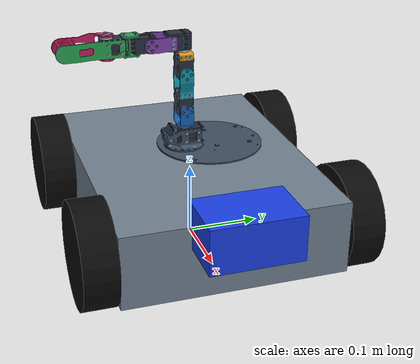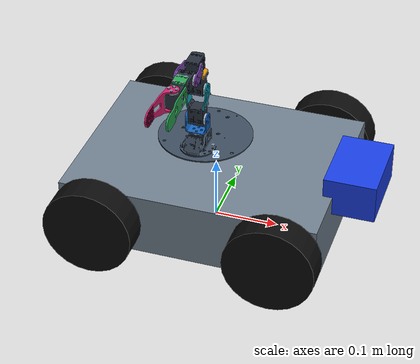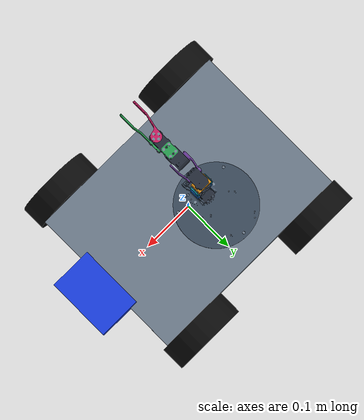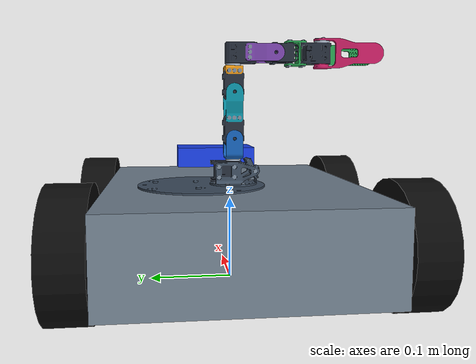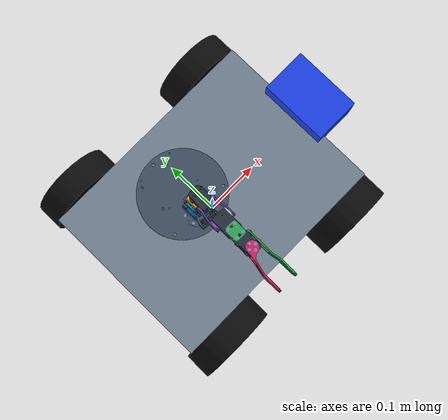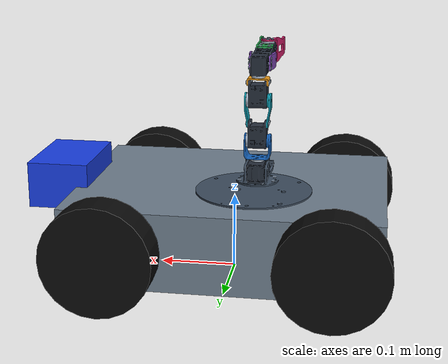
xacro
<?xml version="1.0"?>
<robot name="mobile_manipulator" xmlns:xacro="http://www.ros.org/wiki/xacro">
  <xacro:arg name="mobile_transport" default="false"/>
  <xacro:arg name="pick_place_enabled" default="false"/>
  <xacro:arg name="manipulation_enabled" default="false"/>
  <material name="SlateGray"><color rgba="0.44 0.50 0.56 1"/></material>
  <material name="Black"><color rgba="0.04 0.04 0.04 1"/></material>
  <material name="PoppyOrange"><color rgba="1.0 0.32 0.05 1"/></material>
  <material name="ServoGray"><color rgba="0.28 0.30 0.32 1"/></material>
  <material name="Blue"><color rgba="0.1 0.25 0.9 1"/></material>

  <!-- Compact platform selected after validating the Poppy CAD at physical 1:1. -->
  <xacro:property name="base_length" value="0.40"/>
  <xacro:property name="base_width" value="0.30"/>
  <xacro:property name="base_height" value="0.10"/>
  <xacro:property name="base_mass" value="6.0"/>
  <xacro:property name="base_ixx" value="0.050"/>
  <xacro:property name="base_iyy" value="0.085"/>
  <xacro:property name="base_izz" value="0.125"/>
  <xacro:property name="wheel_radius" value="0.070"/>
  <xacro:property name="wheel_width" value="0.045"/>
  <xacro:property name="wheel_mass" value="0.45"/>
  <xacro:property name="wheel_ixx" value="0.000627"/>
  <xacro:property name="wheel_iyy" value="0.001103"/>
  <xacro:property name="wheel_izz" value="0.000627"/>
  <xacro:property name="wheel_x" value="0.140"/>
  <xacro:property name="wheel_y" value="0.1725"/>
  <xacro:property name="camera_x" value="0.225"/>
  <xacro:property name="camera_z" value="0.050"/>
  <xacro:property name="arm_mount_x" value="-0.030"/>
  <xacro:property name="arm_mount_z" value="0.050"/>

  <xacro:macro name="box" params="name xyz size mass ixx iyy izz color">
    <link name="${name}">
      <inertial>
        <mass value="${mass}"/>
        <inertia ixx="${ixx}" iyy="${iyy}" izz="${izz}" ixy="0" ixz="0" iyz="0"/>
      </inertial>
      <visual>
        <origin xyz="${xyz}"/>
        <geometry><box size="${size}"/></geometry>
        <material name="${color}"/>
      </visual>
      <collision>
        <origin xyz="${xyz}"/>
        <geometry><box size="${size}"/></geometry>
      </collision>
    </link>
  </xacro:macro>

  <xacro:box
    name="base_link"
    xyz="0 0 0"
    size="${base_length} ${base_width} ${base_height}"
    mass="${base_mass}"
    ixx="${base_ixx}"
    iyy="${base_iyy}"
    izz="${base_izz}"
    color="SlateGray"
  />
  <link name="base_footprint"/>
  <joint name="base_fixed" type="fixed">
    <parent link="base_footprint"/>
    <child link="base_link"/>
    <origin xyz="0 0 ${wheel_radius}"/>
  </joint>

  <xacro:macro name="wheel" params="name x y">
    <link name="${name}_link">
      <inertial>
        <mass value="${wheel_mass}"/>
        <inertia ixx="${wheel_ixx}" iyy="${wheel_iyy}" izz="${wheel_izz}" ixy="0" ixz="0" iyz="0"/>
      </inertial>
      <visual>
        <origin rpy="1.5707963267949 0 0"/>
        <geometry><cylinder radius="${wheel_radius}" length="${wheel_width}"/></geometry>
        <material name="Black"/>
      </visual>
      <collision>
        <origin rpy="1.5707963267949 0 0"/>
        <geometry><cylinder radius="${wheel_radius}" length="${wheel_width}"/></geometry>
      </collision>
    </link>
    <joint name="${name}_joint" type="continuous">
      <parent link="base_link"/>
      <child link="${name}_link"/>
      <origin xyz="${x} ${y} 0"/>
      <axis xyz="0 1 0"/>
      <limit effort="20" velocity="12.0"/>
    </joint>
  </xacro:macro>
  <xacro:wheel name="front_left" x="${wheel_x}" y="${wheel_y}"/>
  <xacro:wheel name="rear_left" x="-${wheel_x}" y="${wheel_y}"/>
  <xacro:wheel name="front_right" x="${wheel_x}" y="-${wheel_y}"/>
  <xacro:wheel name="rear_right" x="-${wheel_x}" y="-${wheel_y}"/>

  <link name="poppy_mount_link">
    <inertial>
      <origin xyz="0 0 0.019"/>
      <mass value="0.0450"/>
      <inertia ixx="1.4e-5" iyy="1.3e-5" izz="1.7e-5" ixy="0" ixz="0" iyz="0"/>
    </inertial>
    <visual>
      <origin xyz="0 0 0" rpy="0 0 0"/>
      <geometry>
        <mesh filename="file://$(find mobile_manipulator)/meshes/poppy_ergo_jr/gazebo_inspection/base.dae"/>
      </geometry>
    </visual>
    <collision>
      <origin xyz="0 0.038 0.015" rpy="0 0 0"/>
      <geometry><cylinder length="0.03" radius="0.08"/></geometry>
    </collision>
  </link>
  <joint name="poppy_mount_joint" type="fixed">
    <parent link="base_link"/>
    <child link="poppy_mount_link"/>
    <origin xyz="${arm_mount_x} 0 ${arm_mount_z}"/>
  </joint>

  <link name="poppy_link_1">
    <inertial>
      <origin xyz="0 0 0.024"/>
      <mass value="0.0390"/>
      <inertia ixx="8.6e-6" iyy="9.8e-6" izz="7.0e-6" ixy="0" ixz="0" iyz="0"/>
    </inertial>
    <visual>
      <origin xyz="0 0 0" rpy="0 0 0"/>
      <geometry>
        <mesh filename="file://$(find mobile_manipulator)/meshes/poppy_ergo_jr/gazebo_inspection/long_U.dae"/>
      </geometry>
    </visual>
    <collision>
      <origin xyz="0 0 0.01" rpy="0 0 0"/>
      <geometry><cylinder length="0.02" radius="0.02"/></geometry>
    </collision>
  </link>
  <joint name="poppy_m1_joint" type="revolute">
    <parent link="poppy_mount_link"/>
    <child link="poppy_link_1"/>
    <origin xyz="0 0 0.0327993216120967" rpy="0 0 0"/>
    <axis xyz="0 0 1"/>
    <limit lower="-2.61799" upper="2.61799" effort="0.39" velocity="2.0"/>
  </joint>

  <link name="poppy_link_2">
    <inertial>
      <origin xyz="0.042 0 0"/>
      <mass value="0.0383"/>
      <inertia ixx="5.0e-6" iyy="9.0e-6" izz="8.0e-6" ixy="0" ixz="0" iyz="0"/>
    </inertial>
    <visual>
      <origin xyz="0 0 0" rpy="0 1.5707963267949 0"/>
      <geometry>
        <mesh filename="file://$(find mobile_manipulator)/meshes/poppy_ergo_jr/gazebo_inspection/section_1.dae"/>
      </geometry>
    </visual>
    <collision>
      <origin xyz="0.025 0 0" rpy="0 1.5707963267949 0"/>
      <geometry><cylinder length="0.05" radius="0.02"/></geometry>
    </collision>
  </link>
  <joint name="poppy_m2_joint" type="revolute">
    <parent link="poppy_link_1"/>
    <child link="poppy_link_2"/>
    <origin xyz="0 0 0.0240006783879033" rpy="0 -1.5707963267949 0"/>
    <axis xyz="0 0 -1"/>
    <limit lower="-1.5708" upper="1.5708" effort="0.39" velocity="2.0"/>
  </joint>

  <link name="poppy_link_3">
    <inertial>
      <origin xyz="0.047 0 0"/>
      <mass value="0.0353"/>
      <inertia ixx="4.2e-6" iyy="5.0e-6" izz="4.5e-6" ixy="0" ixz="0" iyz="0"/>
    </inertial>
    <visual>
      <origin xyz="0 0 0" rpy="0 1.5707963267949 0"/>
      <geometry>
        <mesh filename="file://$(find mobile_manipulator)/meshes/poppy_ergo_jr/gazebo_inspection/section_2.dae"/>
      </geometry>
    </visual>
    <collision>
      <origin xyz="0.025 0 0" rpy="0 1.5707963267949 0"/>
      <geometry><cylinder length="0.05" radius="0.02"/></geometry>
    </collision>
  </link>
  <joint name="poppy_m3_joint" type="revolute">
    <parent link="poppy_link_2"/>
    <child link="poppy_link_3"/>
    <origin xyz="0.054 0 0" rpy="0 0 0"/>
    <axis xyz="0 0 -1"/>
    <limit lower="-1.5708" upper="1.5708" effort="0.39" velocity="2.0"/>
  </joint>

  <link name="poppy_link_4">
    <inertial>
      <origin xyz="0 -0.042 0"/>
      <mass value="0.0383"/>
      <inertia ixx="9.0e-6" iyy="5.0e-6" izz="8.0e-6" ixy="0" ixz="0" iyz="0"/>
    </inertial>
    <visual>
      <origin xyz="0 0 0" rpy="0 3.14159268 0"/>
      <geometry>
        <mesh filename="file://$(find mobile_manipulator)/meshes/poppy_ergo_jr/gazebo_inspection/section_3.dae"/>
      </geometry>
    </visual>
    <collision>
      <origin xyz="0 -0.025 0" rpy="1.5707963267949 0 0"/>
      <geometry><cylinder length="0.05" radius="0.02"/></geometry>
    </collision>
  </link>
  <joint name="poppy_m4_joint" type="revolute">
    <parent link="poppy_link_3"/>
    <child link="poppy_link_4"/>
    <origin xyz="0.045 0 0" rpy="0 -1.5707963267949 0"/>
    <axis xyz="0 0 -1"/>
    <limit lower="-1.5708" upper="1.5708" effort="0.39" velocity="2.0"/>
  </joint>

  <link name="poppy_link_5">
    <inertial>
      <origin xyz="0 -0.070 0.005"/>
      <mass value="0.0411"/>
      <inertia ixx="4.7e-5" iyy="8.0e-6" izz="4.8e-5" ixy="0" ixz="0" iyz="0"/>
    </inertial>
    <visual>
      <origin xyz="0 -0.058 0" rpy="0 -1.5707963267949 0"/>
      <geometry>
        <mesh filename="file://$(find mobile_manipulator)/meshes/poppy_ergo_jr/gazebo_inspection/section_4.dae"/>
      </geometry>
    </visual>
    <collision>
      <origin xyz="0 -0.058 0"/>
      <geometry><box size="0.036 0.032 0.030"/></geometry>
    </collision>
    <xacro:unless value="$(arg manipulation_enabled)">
      <collision>
        <origin xyz="0 -0.082 0.0145"/>
        <geometry><box size="0.024 0.092 0.006"/></geometry>
      </collision>
    </xacro:unless>
    <xacro:if value="$(arg manipulation_enabled)">
      <collision name="poppy_fixed_finger_collision">
        <!-- Inner face z=14 mm matches the official distal CAD plate. -->
        <origin xyz="0 -0.110 0.01555"/>
        <geometry><box size="0.024 0.030 0.0031"/></geometry>
      </collision>
    </xacro:if>
  </link>
  <joint name="poppy_m5_joint" type="revolute">
    <parent link="poppy_link_4"/>
    <child link="poppy_link_5"/>
    <origin xyz="0 -0.048 0" rpy="0 -1.5707963267949 0"/>
    <axis xyz="0 0 1"/>
    <limit lower="-1.5708" upper="1.5708" effort="0.39" velocity="2.0"/>
  </joint>

  <link name="poppy_link_6">
    <inertial>
      <origin xyz="-0.0035 -0.030 0"/>
      <mass value="0.00614"/>
      <inertia ixx="3.87e-6" iyy="9.72e-7" izz="3.65e-6" ixy="0" ixz="0" iyz="0"/>
    </inertial>
    <visual>
      <origin xyz="0 0 0" rpy="0 0 0"/>
      <geometry>
        <mesh filename="file://$(find mobile_manipulator)/meshes/poppy_ergo_jr/gazebo_inspection/gripper.dae"/>
      </geometry>
    </visual>
    <xacro:unless value="$(arg manipulation_enabled)">
      <collision>
        <geometry>
          <mesh filename="file://$(find mobile_manipulator)/meshes/poppy_ergo_jr/collision/poppy_link_6_convex.stl"/>
        </geometry>
      </collision>
    </xacro:unless>
    <xacro:if value="$(arg manipulation_enabled)">
      <collision name="poppy_moving_finger_collision">
        <origin xyz="-0.01555 -0.052 0.0001"/>
        <geometry><box size="0.0031 0.030 0.024"/></geometry>
      </collision>
    </xacro:if>
  </link>
  <joint name="poppy_m6_joint" type="revolute">
    <parent link="poppy_link_5"/>
    <child link="poppy_link_6"/>
    <origin xyz="0 -0.058 0" rpy="0 -1.5707963267949 0"/>
    <axis xyz="0 0 -1"/>
    <limit lower="0.0" upper="1.20" effort="0.39" velocity="2.0"/>
  </joint>

  <link name="poppy_fixed_tip"/>
  <joint name="poppy_fixed_tip_joint" type="fixed">
    <parent link="poppy_link_5"/>
    <child link="poppy_fixed_tip"/>
    <origin xyz="0 -0.11 0" rpy="-1.5707963267949 0 0"/>
  </joint>
  <link name="poppy_tool_frame"/>
  <joint name="poppy_tool_frame_joint" type="fixed">
    <parent link="poppy_fixed_tip"/>
    <child link="poppy_tool_frame"/>
    <origin xyz="0 0 0" rpy="0 0 0"/>
  </joint>
  <link name="poppy_grasp_frame"/>
  <joint name="poppy_grasp_frame_joint" type="fixed">
    <parent link="poppy_tool_frame"/>
    <child link="poppy_grasp_frame"/>
    <origin xyz="0 0.0015 0" rpy="0 0 0"/>
  </joint>
  <link name="poppy_moving_tip"/>
  <joint name="poppy_moving_tip_joint" type="fixed">
    <parent link="poppy_link_6"/>
    <child link="poppy_moving_tip"/>
    <origin xyz="0 -0.052 0" rpy="-1.5707963267949 0 0"/>
  </joint>

  <link name="poppy_fixed_contact"/>
  <joint name="poppy_fixed_contact_joint" type="fixed">
    <parent link="poppy_link_5"/>
    <child link="poppy_fixed_contact"/>
    <origin xyz="0 -0.110 0.014"/>
  </joint>
  <link name="poppy_moving_contact"/>
  <joint name="poppy_moving_contact_joint" type="fixed">
    <parent link="poppy_link_6"/>
    <child link="poppy_moving_contact"/>
    <origin xyz="-0.014 -0.052 0.0001"/>
  </joint>

  <!-- The tracking camera stays on the vehicle front to preserve the A/B task. -->
  <link name="camera_link">
    <visual>
      <geometry><box size="0.08 0.12 0.06"/></geometry>
      <material name="Blue"/>
    </visual>
  </link>
  <joint name="camera_fixed" type="fixed">
    <parent link="base_link"/>
    <child link="camera_link"/>
    <origin xyz="${camera_x} 0 ${camera_z}" rpy="0 0 0"/>
  </joint>

  <ros2_control name="GazeboSimSystem" type="system">
    <hardware><plugin>gz_ros2_control/GazeboSimSystem</plugin></hardware>
    <joint name="front_left_joint">
      <command_interface name="velocity"/>
      <state_interface name="position"/>
      <state_interface name="velocity"/>
    </joint>
    <joint name="rear_left_joint">
      <command_interface name="velocity"/>
      <state_interface name="position"/>
      <state_interface name="velocity"/>
    </joint>
    <joint name="front_right_joint">
      <command_interface name="velocity"/>
      <state_interface name="position"/>
      <state_interface name="velocity"/>
    </joint>
    <joint name="rear_right_joint">
      <command_interface name="velocity"/>
      <state_interface name="position"/>
      <state_interface name="velocity"/>
    </joint>
    <joint name="poppy_m1_joint">
      <command_interface name="position"/>
      <state_interface name="position"/>
    </joint>
    <joint name="poppy_m2_joint">
      <command_interface name="position"/>
      <state_interface name="position"/>
    </joint>
    <joint name="poppy_m3_joint">
      <command_interface name="position"/>
      <state_interface name="position"/>
    </joint>
    <joint name="poppy_m4_joint">
      <command_interface name="position"/>
      <state_interface name="position"/>
    </joint>
    <joint name="poppy_m5_joint">
      <command_interface name="position"/>
      <state_interface name="position"/>
    </joint>
    <joint name="poppy_m6_joint">
      <command_interface name="position"/>
      <state_interface name="position"/>
    </joint>
  </ros2_control>

  <gazebo reference="camera_link">
    <sensor name="front_camera" type="camera">
      <topic>/camera/image_raw</topic>
      <update_rate>30</update_rate>
      <camera>
        <horizontal_fov>1.047</horizontal_fov>
        <image>
          <width>640</width>
          <height>480</height>
          <format>R8G8B8</format>
        </image>
        <clip><near>0.05</near><far>20</far></clip>
      </camera>
    </sensor>
  </gazebo>
  <gazebo>
    <plugin filename="gz_ros2_control-system" name="gz_ros2_control::GazeboSimROS2ControlPlugin">
      <parameters>$(find mobile_manipulator)/config/controllers.yaml</parameters>
      <xacro:if value="$(arg manipulation_enabled)">
        <position_proportional_gain>2.0</position_proportional_gain>
      </xacro:if>
    </plugin>
  </gazebo>
  <xacro:if value="$(arg pick_place_enabled)">
    <gazebo>
      <plugin filename="gz-sim-detachable-joint-system"
              name="gz::sim::systems::DetachableJoint">
        <parent_link>poppy_link_5</parent_link>
        <child_model>pick_object</child_model>
        <child_link>object_link</child_link>
        <detach_topic>/pick_object/detach</detach_topic>
        <attach_topic>/pick_object/attach</attach_topic>
        <output_topic>/pick_object/joint_state</output_topic>
        <suppress_child_warning>true</suppress_child_warning>
      </plugin>
    </gazebo>
  </xacro:if>
  <xacro:if value="$(arg mobile_transport)">
    <gazebo reference="base_link">
      <sensor name="mobile_detail_camera" type="camera">
        <pose>-0.26 -0.53 0.38 0 0.32 0.94</pose>
        <topic>/pick_place/detail/image</topic>
        <update_rate>60</update_rate>
        <always_on>true</always_on>
        <camera>
          <horizontal_fov>1.0</horizontal_fov>
          <image><width>960</width><height>720</height><format>R8G8B8</format></image>
          <clip><near>0.05</near><far>4</far></clip>
        </camera>
      </sensor>
    </gazebo>
    <gazebo>
      <plugin filename="gz-sim-pose-publisher-system" name="gz::sim::systems::PosePublisher">
        <publish_model_pose>true</publish_model_pose>
        <publish_link_pose>false</publish_link_pose>
        <publish_nested_model_pose>false</publish_nested_model_pose>
        <publish_collision_pose>false</publish_collision_pose>
        <publish_visual_pose>false</publish_visual_pose>
        <use_pose_vector_msg>true</use_pose_vector_msg>
        <update_frequency>100</update_frequency>
      </plugin>
    </gazebo>
  </xacro:if>
</robot>
